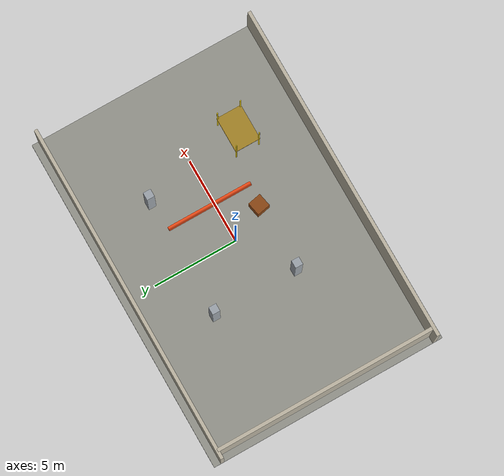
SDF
<?xml version="1.0"?>
<sdf version="1.10">
  <world name="deltaseek_construction">
    <physics name="default_physics" type="ignored">
      <max_step_size>0.002</max_step_size>
      <real_time_factor>1.0</real_time_factor>
    </physics>

    <plugin filename="gz-sim-physics-system" name="gz::sim::systems::Physics"/>
    <plugin filename="gz-sim-user-commands-system" name="gz::sim::systems::UserCommands"/>
    <plugin filename="gz-sim-scene-broadcaster-system" name="gz::sim::systems::SceneBroadcaster"/>
    <plugin filename="gz-sim-sensors-system" name="gz::sim::systems::Sensors">
      <render_engine>ogre2</render_engine>
    </plugin>

    <gravity>0 0 -9.81</gravity>
    <atmosphere type="adiabatic"/>
    <scene>
      <ambient>0.45 0.45 0.45 1</ambient>
      <background>0.72 0.80 0.90 1</background>
      <shadows>true</shadows>
    </scene>

    <light type="directional" name="sun">
      <cast_shadows>true</cast_shadows>
      <pose>0 0 10 0 0 0</pose>
      <diffuse>0.9 0.9 0.9 1</diffuse>
      <specular>0.2 0.2 0.2 1</specular>
      <direction>-0.4 0.2 -0.9</direction>
    </light>

    <model name="floor">
      <static>true</static>
      <link name="link">
        <collision name="collision">
          <geometry><box><size>20 14 0.20</size></box></geometry>
        </collision>
        <visual name="visual">
          <geometry><box><size>20 14 0.20</size></box></geometry>
          <material><ambient>0.52 0.52 0.50 1</ambient><diffuse>0.58 0.58 0.55 1</diffuse></material>
        </visual>
      </link>
      <pose>0 0 -0.10 0 0 0</pose>
    </model>

    <!-- A partial shell gives the robot indoor/outdoor construction geometry. -->
    <model name="north_wall">
      <static>true</static><pose>0 6.5 1.5 0 0 0</pose>
      <link name="link"><collision name="collision"><geometry><box><size>20 0.20 3</size></box></geometry></collision>
      <visual name="visual"><geometry><box><size>20 0.20 3</size></box></geometry><material><diffuse>0.75 0.72 0.65 1</diffuse></material></visual></link>
    </model>
    <model name="south_wall">
      <static>true</static><pose>0 -6.5 1.5 0 0 0</pose>
      <link name="link"><collision name="collision"><geometry><box><size>20 0.20 3</size></box></geometry></collision>
      <visual name="visual"><geometry><box><size>20 0.20 3</size></box></geometry><material><diffuse>0.75 0.72 0.65 1</diffuse></material></visual></link>
    </model>
    <model name="west_wall">
      <static>true</static><pose>-9.5 0 1.5 0 0 0</pose>
      <link name="link"><collision name="collision"><geometry><box><size>0.20 13 3</size></box></geometry></collision>
      <visual name="visual"><geometry><box><size>0.20 13 3</size></box></geometry><material><diffuse>0.75 0.72 0.65 1</diffuse></material></visual></link>
    </model>

    <model name="structural_columns">
      <static>true</static>
      <link name="column_1"><pose>-3 -2 1.5 0 0 0</pose><collision name="collision"><geometry><box><size>0.45 0.45 3</size></box></geometry></collision><visual name="visual"><geometry><box><size>0.45 0.45 3</size></box></geometry><material><diffuse>0.62 0.65 0.68 1</diffuse></material></visual></link>
      <link name="column_2"><pose>-3 3 1.5 0 0 0</pose><collision name="collision"><geometry><box><size>0.45 0.45 3</size></box></geometry></collision><visual name="visual"><geometry><box><size>0.45 0.45 3</size></box></geometry><material><diffuse>0.62 0.65 0.68 1</diffuse></material></visual></link>
      <link name="column_3"><pose>4 3 1.5 0 0 0</pose><collision name="collision"><geometry><box><size>0.45 0.45 3</size></box></geometry></collision><visual name="visual"><geometry><box><size>0.45 0.45 3</size></box></geometry><material><diffuse>0.62 0.65 0.68 1</diffuse></material></visual></link>
    </model>

    <!-- Actual MEP pipe is y=0.45 m; BIM expects y=0.0 m. -->
    <model name="actual_pipe_offset_01">
      <static>true</static><pose>2 0.45 2.20 1.5707963 0 0</pose>
      <link name="link">
        <collision name="collision"><geometry><cylinder><radius>0.12</radius><length>5.0</length></cylinder></geometry></collision>
        <visual name="visual"><geometry><cylinder><radius>0.12</radius><length>5.0</length></cylinder></geometry><material><diffuse>0.90 0.28 0.08 1</diffuse></material></visual>
      </link>
    </model>

    <!-- This is deliberately present in reality but absent from the BIM. -->
    <model name="actual_crate_unexpected_01">
      <static>true</static><pose>1 -2 0.40 0 0 0.20</pose>
      <link name="link">
        <collision name="collision"><geometry><box><size>0.8 0.8 0.8</size></box></geometry></collision>
        <visual name="visual"><geometry><box><size>0.8 0.8 0.8</size></box></geometry><material><diffuse>0.55 0.28 0.08 1</diffuse></material></visual>
      </link>
    </model>

    <!-- Beam beam_missing_01 is deliberately absent; its expected pose lives
         only in discrepancies.yaml so camera observations see the real scene. -->
    <model name="scaffold">
      <static>true</static><pose>5 -3 0 0 0 0</pose>
      <link name="link">
        <visual name="post_1"><pose>-1 -0.7 1.5 0 0 0</pose><geometry><cylinder><radius>0.04</radius><length>3</length></cylinder></geometry><material><diffuse>0.8 0.7 0.05 1</diffuse></material></visual>
        <visual name="post_2"><pose>1 -0.7 1.5 0 0 0</pose><geometry><cylinder><radius>0.04</radius><length>3</length></cylinder></geometry><material><diffuse>0.8 0.7 0.05 1</diffuse></material></visual>
        <visual name="post_3"><pose>-1 0.7 1.5 0 0 0</pose><geometry><cylinder><radius>0.04</radius><length>3</length></cylinder></geometry><material><diffuse>0.8 0.7 0.05 1</diffuse></material></visual>
        <visual name="post_4"><pose>1 0.7 1.5 0 0 0</pose><geometry><cylinder><radius>0.04</radius><length>3</length></cylinder></geometry><material><diffuse>0.8 0.7 0.05 1</diffuse></material></visual>
        <collision name="deck_collision"><pose>0 0 1.6 0 0 0</pose><geometry><box><size>2.1 1.5 0.10</size></box></geometry></collision>
        <visual name="deck"><pose>0 0 1.6 0 0 0</pose><geometry><box><size>2.1 1.5 0.10</size></box></geometry><material><diffuse>0.65 0.52 0.15 1</diffuse></material></visual>
      </link>
    </model>
  </world>
</sdf>
